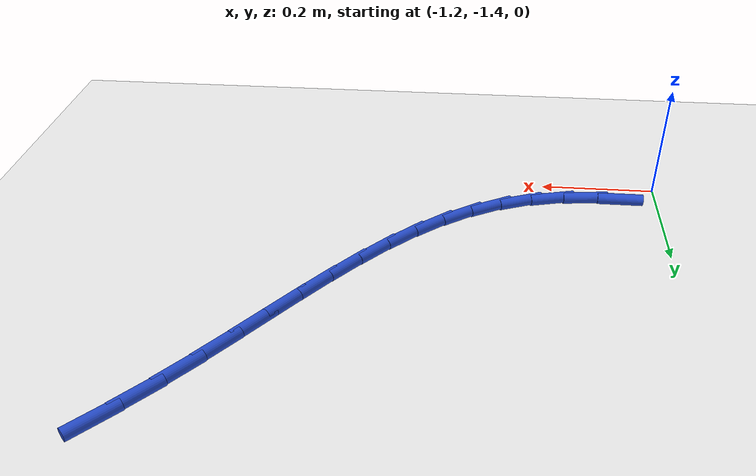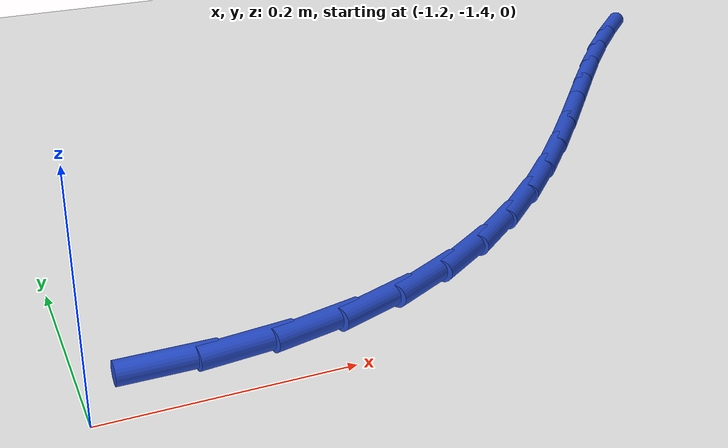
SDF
<sdf version="1.6">
 <world name="default">
  <model name="ground_plane">
   <static>1</static>
   <link name="link">
    <collision name="collision">
     <geometry><plane><normal>0 0 1</normal><size>100 100</size></plane></geometry>
     <surface><friction><ode><mu>100</mu><mu2>50</mu2></ode></friction></surface>
    </collision>
    <visual name="visual">
     <cast_shadows>0</cast_shadows>
     <geometry><plane><normal>0 0 1</normal><size>100 100</size></plane></geometry>
     <material>
      <script><uri>file://media/materials/scripts/gazebo.material</uri><name>Gazebo/WhiteGlow</name></script>
     </material>
    </visual>
   </link>
  </model>
  <model name="line">
   <link name="link_99">
    <pose>-1.134227330891563 -1.3544138190410107 0.01 0 1.57 -0.0030496428512501892</pose>
    <collision name="collision">
     <geometry><cylinder><radius>0.01</radius><length>0.08</length></cylinder></geometry>
    </collision>
    <visual name="visual">
     <material>
      <script><name>Gazebo/Blue</name><uri>file://media/materials/scripts/gazebo.material</uri></script>
     </material>
     <geometry><cylinder><radius>0.01</radius><length>0.08</length></cylinder></geometry>
    </visual>
   </link>
   <link name="link_100">
    <pose>-1.0728311069385137 -1.3546010561769384 0.01 0 1.57 0.1122744429078669</pose>
    <collision name="collision">
     <geometry><cylinder><radius>0.01</radius><length>0.08</length></cylinder></geometry>
    </collision>
    <visual name="visual">
     <material>
      <script><name>Gazebo/Blue</name><uri>file://media/materials/scripts/gazebo.material</uri></script>
     </material>
     <geometry><cylinder><radius>0.01</radius><length>0.08</length></cylinder></geometry>
    </visual>
   </link>
   <link name="link_101">
    <pose>-1.0134203212660695 -1.3479025736111891 0.01 0 1.57 0.24081908659120654</pose>
    <collision name="collision">
     <geometry><cylinder><radius>0.01</radius><length>0.08</length></cylinder></geometry>
    </collision>
    <visual name="visual">
     <material>
      <script><name>Gazebo/Blue</name><uri>file://media/materials/scripts/gazebo.material</uri></script>
     </material>
     <geometry><cylinder><radius>0.01</radius><length>0.08</length></cylinder></geometry>
    </visual>
   </link>
   <link name="link_102">
    <pose>-0.9569108840691177 -1.3340247025965084 0.01 0 1.57 0.3775772830311839</pose>
    <collision name="collision">
     <geometry><cylinder><radius>0.01</radius><length>0.08</length></cylinder></geometry>
    </collision>
    <visual name="visual">
     <material>
      <script><name>Gazebo/Blue</name><uri>file://media/materials/scripts/gazebo.material</uri></script>
     </material>
     <geometry><cylinder><radius>0.01</radius><length>0.08</length></cylinder></geometry>
    </visual>
   </link>
   <link name="link_103">
    <pose>-0.9038457156087061 -1.3129787268554263 0.01 0 1.57 0.503774136618906</pose>
    <collision name="collision">
     <geometry><cylinder><radius>0.01</radius><length>0.08</length></cylinder></geometry>
    </collision>
    <visual name="visual">
     <material>
      <script><name>Gazebo/Blue</name><uri>file://media/materials/scripts/gazebo.material</uri></script>
     </material>
     <geometry><cylinder><radius>0.01</radius><length>0.08</length></cylinder></geometry>
    </visual>
   </link>
   <link name="link_104">
    <pose>-0.8539273159484458 -1.2854630484255134 0.01 0 1.57 0.613055769926546</pose>
    <collision name="collision">
     <geometry><cylinder><radius>0.01</radius><length>0.08</length></cylinder></geometry>
    </collision>
    <visual name="visual">
     <material>
      <script><name>Gazebo/Blue</name><uri>file://media/materials/scripts/gazebo.material</uri></script>
     </material>
     <geometry><cylinder><radius>0.01</radius><length>0.08</length></cylinder></geometry>
    </visual>
   </link>
   <link name="link_105">
    <pose>-0.8067431841982455 -1.252270092859928 0.01 0 1.57 0.7037792651379962</pose>
    <collision name="collision">
     <geometry><cylinder><radius>0.01</radius><length>0.08</length></cylinder></geometry>
    </collision>
    <visual name="visual">
     <material>
      <script><name>Gazebo/Blue</name><uri>file://media/materials/scripts/gazebo.material</uri></script>
     </material>
     <geometry><cylinder><radius>0.01</radius><length>0.08</length></cylinder></geometry>
    </visual>
   </link>
   <link name="link_106">
    <pose>-0.7618808194680134 -1.214192285711829 0.01 0 1.57 0.7762015854955745</pose>
    <collision name="collision">
     <geometry><cylinder><radius>0.01</radius><length>0.08</length></cylinder></geometry>
    </collision>
    <visual name="visual">
     <material>
      <script><name>Gazebo/Blue</name><uri>file://media/materials/scripts/gazebo.material</uri></script>
     </material>
     <geometry><cylinder><radius>0.01</radius><length>0.08</length></cylinder></geometry>
    </visual>
   </link>
   <link name="link_107">
    <pose>-0.7189277208676585 -1.172022052534375 0.01 0 1.57 0.8315411466205407</pose>
    <collision name="collision">
     <geometry><cylinder><radius>0.01</radius><length>0.08</length></cylinder></geometry>
    </collision>
    <visual name="visual">
     <material>
      <script><name>Gazebo/Blue</name><uri>file://media/materials/scripts/gazebo.material</uri></script>
     </material>
     <geometry><cylinder><radius>0.01</radius><length>0.08</length></cylinder></geometry>
    </visual>
   </link>
   <link name="link_108">
    <pose>-0.6774713875070905 -1.1265518188807262 0.01 0 1.57 0.8712730329117252</pose>
    <collision name="collision">
     <geometry><cylinder><radius>0.01</radius><length>0.08</length></cylinder></geometry>
    </collision>
    <visual name="visual">
     <material>
      <script><name>Gazebo/Blue</name><uri>file://media/materials/scripts/gazebo.material</uri></script>
     </material>
     <geometry><cylinder><radius>0.01</radius><length>0.08</length></cylinder></geometry>
    </visual>
   </link>
   <link name="link_109">
    <pose>-0.6370993184962173 -1.0785740103040404 0.01 0 1.57 0.8967190883479753</pose>
    <collision name="collision">
     <geometry><cylinder><radius>0.01</radius><length>0.08</length></cylinder></geometry>
    </collision>
    <visual name="visual">
     <material>
      <script><name>Gazebo/Blue</name><uri>file://media/materials/scripts/gazebo.material</uri></script>
     </material>
     <geometry><cylinder><radius>0.01</radius><length>0.08</length></cylinder></geometry>
    </visual>
   </link>
   <link name="link_110">
    <pose>-0.5973990129449475 -1.0288810523574765 0.01 0 1.57 0.908851587856181</pose>
    <collision name="collision">
     <geometry><cylinder><radius>0.01</radius><length>0.08</length></cylinder></geometry>
    </collision>
    <visual name="visual">
     <material>
      <script><name>Gazebo/Blue</name><uri>file://media/materials/scripts/gazebo.material</uri></script>
     </material>
     <geometry><cylinder><radius>0.01</radius><length>0.08</length></cylinder></geometry>
    </visual>
   </link>
   <link name="link_111">
    <pose>-0.5579579699631906 -0.9782653705941942 0.01 0 1.57 0.90821792032666</pose>
    <collision name="collision">
     <geometry><cylinder><radius>0.01</radius><length>0.08</length></cylinder></geometry>
    </collision>
    <visual name="visual">
     <material>
      <script><name>Gazebo/Blue</name><uri>file://media/materials/scripts/gazebo.material</uri></script>
     </material>
     <geometry><cylinder><radius>0.01</radius><length>0.08</length></cylinder></geometry>
    </visual>
   </link>
   <link name="link_112">
    <pose>-0.5183636886608549 -0.9275193905673522 0.01 0 1.57 0.8949249117505254</pose>
    <collision name="collision">
     <geometry><cylinder><radius>0.01</radius><length>0.08</length></cylinder></geometry>
    </collision>
    <visual name="visual">
     <material>
      <script><name>Gazebo/Blue</name><uri>file://media/materials/scripts/gazebo.material</uri></script>
     </material>
     <geometry><cylinder><radius>0.01</radius><length>0.08</length></cylinder></geometry>
    </visual>
   </link>
   <link name="link_113">
    <pose>-0.47820366814784954 -0.8774355378301091 0.01 0 1.57 0.86865455215555</pose>
    <collision name="collision">
     <geometry><cylinder><radius>0.01</radius><length>0.08</length></cylinder></geometry>
    </collision>
    <visual name="visual">
     <material>
      <script><name>Gazebo/Blue</name><uri>file://media/materials/scripts/gazebo.material</uri></script>
     </material>
     <geometry><cylinder><radius>0.01</radius><length>0.08</length></cylinder></geometry>
    </visual>
   </link>
   <link name="link_114">
    <pose>-0.437065407534083 -0.8288062379356242 0.01 0 1.57 0.8319888021224029</pose>
    <collision name="collision">
     <geometry><cylinder><radius>0.01</radius><length>0.08</length></cylinder></geometry>
    </collision>
    <visual name="visual">
     <material>
      <script><name>Gazebo/Blue</name><uri>file://media/materials/scripts/gazebo.material</uri></script>
     </material>
     <geometry><cylinder><radius>0.01</radius><length>0.08</length></cylinder></geometry>
    </visual>
   </link>
   <link name="link_115">
    <pose>-0.39466515440232575 -0.7822588565580301 0.01 0 1.57 0.8035234698577157</pose>
    <collision name="collision">
     <geometry><cylinder><radius>0.01</radius><length>0.08</length></cylinder></geometry>
    </collision>
    <visual name="visual">
     <material>
      <script><name>Gazebo/Blue</name><uri>file://media/materials/scripts/gazebo.material</uri></script>
     </material>
     <geometry><cylinder><radius>0.01</radius><length>0.08</length></cylinder></geometry>
    </visual>
   </link>
  </model>
 </world>
</sdf>
